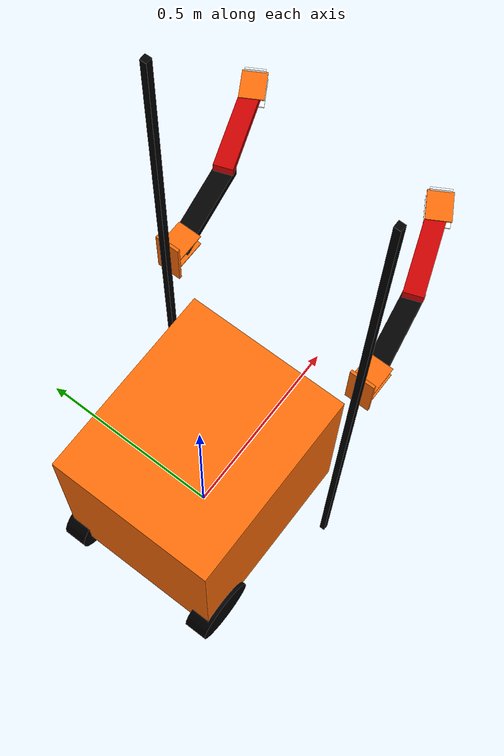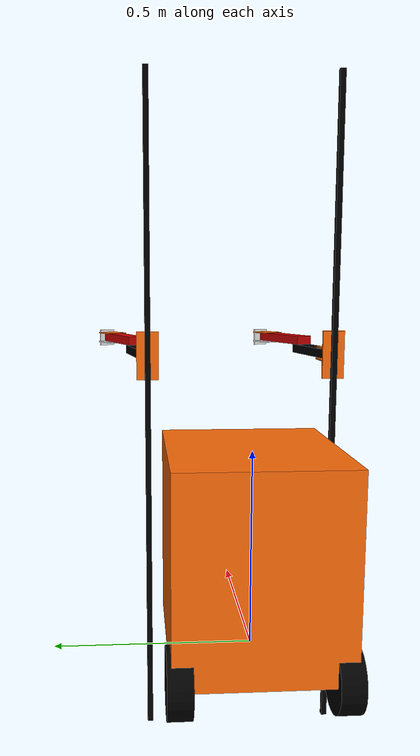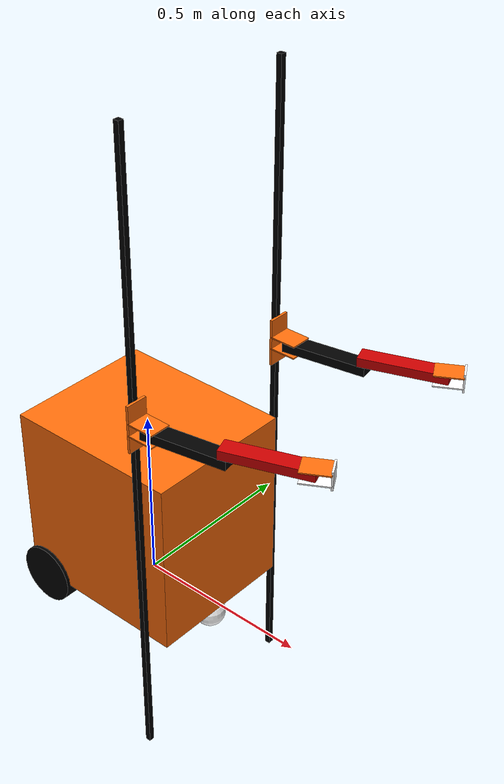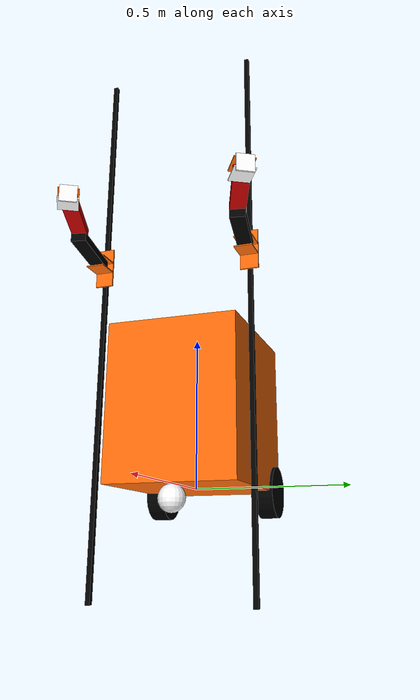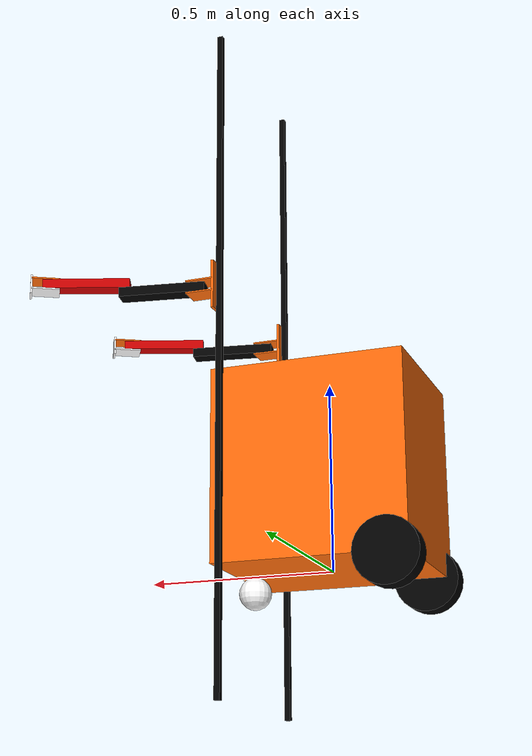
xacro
<?xml version="1.0"?>
<robot xmlns:xacro="http://www.ros.org/wiki/xacro" name="cobo_full">

  <!-- Base link + wheels (continuous joints for diff drive controller) -->
  <xacro:include filename="cobo_base.macro.xacro" />

  <!-- ros2_control: diff drive hardware -->
  <xacro:include filename="$(find diffdrive_arduino)/urdf/diffbot.ros2_control_v5.xacro" />

  <!-- Arm macro (cobo_arm) and arm link properties -->
  <xacro:include filename="cobo_arm.macro.xacro" />

  <!-- Left arm -->
  <xacro:cobo_arm prefix="left_" parent="base_link">
    <origin xyz="${base_length/2} ${base_width/2} ${-base_height/2 - wheel_radius}" rpy="0 0 ${-PI/2}"/>
  </xacro:cobo_arm>

  <!-- Right arm -->
  <xacro:cobo_arm prefix="right_" parent="base_link">
    <origin xyz="${base_length/2} ${-base_width/2} ${-base_height/2 - wheel_radius}" rpy="0 0 ${-PI/2}"/>
  </xacro:cobo_arm>

  <!-- ros2_control: arm + GPIO hardware -->
  <xacro:include filename="../ros2_control/cobo.ros2_control_macro.xacro" />

  <!-- ros2_control: arm + GPIO (cobo_arm_control/RobotSystem hardware plugin) -->
  <xacro:cobo_ros2_control name="arm" prefix="cobo_"/>

  <!-- ros2_control: diff drive (diffdrive_arduino/DiffDriveArduinoHardware plugin).
       prefix="" so it references left_wheel_joint / right_wheel_joint defined above. -->
  <xacro:diffbot_ros2_control name="DiffBot" prefix=""/>

</robot>

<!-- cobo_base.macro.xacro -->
<robot xmlns:xacro="http://www.ros.org/wiki/xacro" name="cobo_base">

    <material name="black">
    <color rgba="0.0 0.0 0.0 1.0"/>
  </material>
  <material name="blue">
    <color rgba="0.0 0.0 0.8 1.0"/>
  </material>
  <material name="green">
    <color rgba="0.0 0.8 0.0 1.0"/>
  </material>
  <material name="grey">
    <color rgba="0.2 0.2 0.2 1.0"/>
  </material>
  <material name="orange">
    <color rgba="1.0 0.4235294117647059 0.0392156862745098 1.0"/>
  </material>
  <material name="brown">
    <color rgba="0.8705882352941177 0.8117647058823529 0.7647058823529411 1.0"/>
  </material>
  <material name="red">
    <color rgba="0.8 0.0 0.0 1.0"/>
  </material>
  <material name="white">
    <color rgba="1.0 1.0 1.0 1.0"/>
  </material>

  <!-- Properties (from diffbot_description.urdf_v5.xacro) -->
  <xacro:property name="PI"                  value="3.1415926535897931"/>
  <xacro:property name="base_mass"           value="45"/>
  <xacro:property name="base_width"          value="0.51"/>
  <xacro:property name="base_length"         value="0.43"/>
  <xacro:property name="base_height"         value="0.51"/>
  <xacro:property name="wheel_mass"          value="3.0"/>
  <xacro:property name="wheel_len"           value="0.060"/>
  <xacro:property name="wheel_radius"        value="0.085"/>
  <xacro:property name="wheel_separation"    value="0.275"/>
  <xacro:property name="caster_wheel_mass"   value="0.1"/>
  <xacro:property name="caster_wheel_radius" value="${wheel_radius/2}"/>
  <xacro:property name="z_offset"            value="${wheel_radius}"/>

  <!-- base_footprint: virtual link used by the nav stack -->
  <link name="base_footprint"/>

  <joint name="base_footprint_joint" type="fixed">
    <parent link="base_footprint"/>
    <child link="base_link"/>
    <origin xyz="0 0 0" rpy="0 0 0"/>
  </joint>

  <!-- Base link -->
  <link name="base_link">
    <collision>
      <origin xyz="0 0 1" rpy="0 0 0"/>
      <geometry>
        <box size="${base_width} ${base_length} ${base_height}"/>
      </geometry>
    </collision>
    <visual>
      <origin xyz="0 0 0.255" rpy="0 0 0"/>
      <geometry>
        <box size="${base_width} ${base_length} ${base_height}"/>
      </geometry>
      <material name="orange"/>
    </visual>
    <inertial>
      <origin xyz="0.000471 0 0.999626" rpy="0 0 0"/>
      <mass value="${base_mass}"/>
      <inertia
        ixx="${(base_mass / 12.0) * (base_length*base_length + base_height*base_height)}" ixy="0.0" ixz="0.0"
        iyy="${(base_mass / 12.0) * (base_height*base_height + base_width*base_width)}" iyz="0.0"
        izz="${(base_mass / 12.0) * (base_width*base_width + base_length*base_length)}"/>
    </inertial>
  </link>

  <!-- Right wheel: CONTINUOUS -->
  <joint name="right_wheel_joint" type="continuous">
    <parent link="base_link"/>
    <child link="right_wheel"/>
    <origin xyz="-0.2 -${base_width/2 - wheel_len} 0" rpy="0 0 0"/>
    <axis xyz="0 1 0"/>
    <dynamics damping="0.2"/>
  </joint>

  <link name="right_wheel">
    <collision>
      <origin xyz="0 0 0" rpy="${PI/2} 0 0"/>
      <geometry>
        <cylinder length="${wheel_len}" radius="${wheel_radius}"/>
      </geometry>
    </collision>
    <visual>
      <origin xyz="0 0 0" rpy="${PI/2} 0 0"/>
      <geometry>
        <cylinder length="${wheel_len}" radius="${wheel_radius}"/>
      </geometry>
      <material name="black"/>
    </visual>
    <inertial>
      <origin xyz="0 0 0" rpy="${PI/2} 0 0"/>
      <mass value="${wheel_mass}"/>
      <inertia
        ixx="0.055" ixy="0.0" ixz="0.0"
        iyy="0.055" iyz="0.0"
        izz="0.108"/>
    </inertial>
  </link>

  <!-- Left wheel: CONTINUOUS -->
  <joint name="left_wheel_joint" type="continuous">
    <parent link="base_link"/>
    <child link="left_wheel"/>
    <origin xyz="-0.2 ${base_width/2 - wheel_len} 0" rpy="0 0 0"/>
    <axis xyz="0 1 0"/>
    <dynamics damping="0.2"/>
  </joint>

  <link name="left_wheel">
    <collision>
      <origin xyz="0 0 0" rpy="${PI/2} 0 0"/>
      <geometry>
        <cylinder length="${wheel_len}" radius="${wheel_radius}"/>
      </geometry>
    </collision>
    <visual>
      <origin xyz="0 0 0" rpy="${PI/2} 0 0"/>
      <geometry>
        <cylinder length="${wheel_len}" radius="${wheel_radius}"/>
      </geometry>
      <material name="black"/>
    </visual>
    <inertial>
      <origin xyz="0 0 0" rpy="${PI/2} 0 0"/>
      <mass value="${wheel_mass}"/>
      <inertia
        ixx="0.055" ixy="0.0" ixz="0.0"
        iyy="0.055" iyz="0.0"
        izz="0.108"/>
    </inertial>
  </link>

  <!-- Caster wheel (single, fixed) -->
  <joint name="caster_wheel_joint" type="fixed">
    <parent link="base_link"/>
    <child link="caster_wheel"/>
    <origin xyz="${base_width/2 - caster_wheel_radius} 0 ${-caster_wheel_radius}" rpy="0 0 0"/>
  </joint>

  <link name="caster_wheel">
    <collision>
      <origin xyz="0 0 0" rpy="0 0 0"/>
      <geometry>
        <sphere radius="${caster_wheel_radius}"/>
      </geometry>
      <surface>
        <friction>
          <ode>
            <mu>0.001</mu>
            <mu2>0.001</mu2>
            <kp>0.001</kp>
            <kd>0.001</kd>
          </ode>
        </friction>
      </surface>
    </collision>
    <visual>
      <origin xyz="0 0 0" rpy="0 0 0"/>
      <geometry>
        <sphere radius="${caster_wheel_radius}"/>
      </geometry>
      <material name="white"/>
    </visual>
    <inertial>
      <origin xyz="0 0 0" rpy="0 0 0"/>
      <mass value="${caster_wheel_mass}"/>
      <inertia
        ixx="0.001" ixy="0.0" ixz="0.0"
        iyy="0.001" iyz="0.0"
        izz="0.001"/>
    </inertial>
  </link>

</robot>

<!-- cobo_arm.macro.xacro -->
<!-- Arm macro for cobo_full.  Fully self-contained: no dependency on bob4.macro.xacro.
     Relies on PI, base_*, and material names being already in scope (defined by cobo_base.macro.xacro). -->
<robot xmlns:xacro="http://www.ros.org/wiki/xacro" name="cobo_arm">

  <!-- Tower (vertical rail) -->
  <xacro:property name="s0_tower_width"  value="0.015"/>
  <xacro:property name="s0_tower_length" value="0.015"/>
  <xacro:property name="s0_tower_height" value="1.8"/>
  <xacro:property name="s0_tower_mass"   value="1.0"/>
  <xacro:property name="s0_tower_color"  value="black"/>

  <!-- Slider -->
  <xacro:property name="s1_slider_width"  value="0.007"/>
  <xacro:property name="s1_slider_length" value="0.060"/>
  <xacro:property name="s1_slider_height" value="0.131"/>
  <xacro:property name="s1_slider_mass"   value="1"/>
  <xacro:property name="s1_slider_color"  value="orange"/>

  <!-- Slider bracket -->
  <xacro:property name="s1_slider_bracket_width"  value="0.075"/>
  <xacro:property name="s1_slider_bracket_length" value="0.060"/>
  <xacro:property name="s1_slider_bracket_height" value="0.0035"/>
  <xacro:property name="s1_slider_bracket_mass"   value="1"/>
  <xacro:property name="s1_slider_bracket_color"  value="orange"/>

  <!-- Arm link 0 -->
  <xacro:property name="arm_l0_width"  value="0.0475"/>
  <xacro:property name="arm_l0_length" value="0.23"/>
  <xacro:property name="arm_l0_height" value="0.025"/>
  <xacro:property name="arm_l0_mass"   value="1"/>
  <xacro:property name="arm_l0_color"  value="black"/>

  <!-- Arm link 1 -->
  <xacro:property name="arm_l1_width"  value="0.0475"/>
  <xacro:property name="arm_l1_length" value="0.23"/>
  <xacro:property name="arm_l1_height" value="0.025"/>
  <xacro:property name="arm_l1_mass"   value="1"/>
  <xacro:property name="arm_l1_color"  value="red"/>

  <!-- Arm link 2 -->
  <xacro:property name="arm_l2_width"  value="0.05"/>
  <xacro:property name="arm_l2_length" value="0.005"/>
  <xacro:property name="arm_l2_height" value="0.05"/>
  <xacro:property name="arm_l2_mass"   value="1"/>
  <xacro:property name="arm_l2_color"  value="white"/>

  <!-- Arm link 2 bracket -->
  <xacro:property name="arm_l2_bracket_width"  value="0.06"/>
  <xacro:property name="arm_l2_bracket_length" value="0.075"/>
  <xacro:property name="arm_l2_bracket_height" value="0.0035"/>
  <xacro:property name="arm_l2_bracket_mass"   value="1"/>
  <xacro:property name="arm_l2_bracket_color"  value="orange"/>

  <xacro:macro name="cobo_arm" params="prefix parent *origin">

    <link name="${prefix}T_S0_T">
      <visual>
        <geometry>
          <box size="${s0_tower_length} ${s0_tower_width} ${s0_tower_height}"/>
        </geometry>
        <origin xyz="0 0 ${s0_tower_height/2}" rpy="0 0 0"/>
        <material name="${s0_tower_color}"/>
      </visual>
      <collision>
        <geometry>
          <box size="${s0_tower_length} ${s0_tower_width} ${s0_tower_height}"/>
        </geometry>
      </collision>
    </link>

    <joint name="${prefix}T_J_S0_BASE_TO_T" type="fixed">
      <parent link="base_link"/>
      <child link="${prefix}T_S0_T"/>
      <xacro:insert_block name="origin"/>
    </joint>

    <link name="${prefix}S1_U_SL">
      <visual>
        <geometry>
          <box size="${s1_slider_length} ${s1_slider_width} ${s1_slider_height}"/>
        </geometry>
        <material name="${s1_slider_color}"/>
      </visual>
      <collision>
        <geometry>
          <box size="${s1_slider_length} ${s1_slider_width} ${s1_slider_height}"/>
        </geometry>
      </collision>
    </link>

    <joint name="${prefix}T_J_S0_T_TO_U_SL" type="prismatic">
      <parent link="${prefix}T_S0_T"/>
      <child link="${prefix}S1_U_SL"/>
      <origin rpy="0 0 0" xyz="0 0.01 0"/>
      <axis xyz="0 0 1"/>
      <limit lower="0.320" upper="${s0_tower_height}" velocity="1.0" effort="1"/>
    </joint>

    <link name="${prefix}S1_SL_B0">
      <visual>
        <geometry>
          <box size="${s1_slider_bracket_length} ${s1_slider_bracket_width} ${s1_slider_bracket_height}"/>
        </geometry>
        <material name="${s1_slider_color}"/>
      </visual>
      <collision>
        <geometry>
          <box size="${s1_slider_bracket_length} ${s1_slider_bracket_width} ${s1_slider_bracket_height}"/>
        </geometry>
      </collision>
    </link>

    <link name="${prefix}S1_SL_B1">
      <visual>
        <geometry>
          <box size="${s1_slider_bracket_length} ${s1_slider_bracket_width} ${s1_slider_bracket_height}"/>
        </geometry>
        <material name="${s1_slider_color}"/>
      </visual>
      <collision>
        <geometry>
          <box size="${s1_slider_bracket_length} ${s1_slider_bracket_width} ${s1_slider_bracket_height}"/>
        </geometry>
      </collision>
    </link>

    <joint name="${prefix}T_J_S1_SL_TO_B0" type="fixed">
      <parent link="${prefix}S1_U_SL"/>
      <child link="${prefix}S1_SL_B0"/>
      <origin rpy="0 0 0" xyz="0 ${s1_slider_bracket_width/2} ${arm_l0_height/2 + 0.004}"/>
    </joint>

    <joint name="${prefix}T_J_S1_SL_TO_B1" type="fixed">
      <parent link="${prefix}S1_U_SL"/>
      <child link="${prefix}S1_SL_B1"/>
      <origin rpy="0 0 0" xyz="0 ${s1_slider_bracket_width/2} ${-arm_l0_height/2 - 0.004}"/>
    </joint>

    <link name="${prefix}S1_U_A_L0">
      <visual>
        <geometry>
          <box size="${arm_l0_length} ${arm_l0_width} ${arm_l0_height}"/>
        </geometry>
        <origin rpy="0 0 0" xyz="0.10 0 0"/>
        <material name="${arm_l0_color}"/>
      </visual>
      <collision>
        <geometry>
          <box size="${arm_l0_length} ${arm_l0_width} ${arm_l0_height}"/>
        </geometry>
        <origin rpy="0 0 0" xyz="0.10 0 0"/>
      </collision>
    </link>

    <joint name="${prefix}A_J_S1_U_SL_TO_A_L0" type="revolute">
      <parent link="${prefix}S1_SL_B1"/>
      <child link="${prefix}S1_U_A_L0"/>
      <origin rpy="0 0 ${-PI/2}" xyz="0 ${s1_slider_width} ${arm_l0_height/2 + 0.004}"/>
      <axis xyz="0 0 1"/>
      <limit lower="1.57" upper="5.06" velocity="1.0" effort="1"/>
    </joint>

    <link name="${prefix}S1_U_A_L1">
      <visual>
        <geometry>
          <box size="${arm_l1_length} ${arm_l1_width} ${arm_l1_height}"/>
        </geometry>
        <origin rpy="0 0 0" xyz="0.10 0 0"/>
        <material name="${arm_l1_color}"/>
      </visual>
      <collision>
        <geometry>
          <box size="${arm_l1_length} ${arm_l1_width} ${arm_l1_height}"/>
        </geometry>
        <origin rpy="0 0 0" xyz="0.10 0 0"/>
      </collision>
    </link>

    <joint name="${prefix}A_J_S1_U_A_L0_TO_L1" type="revolute">
      <parent link="${prefix}S1_U_A_L0"/>
      <child link="${prefix}S1_U_A_L1"/>
      <axis xyz="0 0 1"/>
      <origin rpy="0 0 ${PI}" xyz="${arm_l1_length-0.025} 0 ${arm_l0_height}"/>
      <limit lower="1.57" upper="5.06" velocity="1.0" effort="1"/>
    </joint>

    <link name="${prefix}S1_U_A_L2">
      <visual>
        <geometry>
          <box size="${arm_l2_length} ${arm_l2_width} ${arm_l2_height}"/>
        </geometry>
        <material name="${arm_l2_color}"/>
      </visual>
      <collision>
        <geometry>
          <box size="${arm_l2_length} ${arm_l2_width} ${arm_l2_height}"/>
        </geometry>
      </collision>
    </link>

    <link name="${prefix}S1_U_A_L2_B0">
      <visual>
        <geometry>
          <box size="${arm_l2_bracket_length} ${arm_l2_bracket_width} ${arm_l2_bracket_height}"/>
        </geometry>
        <material name="${arm_l2_bracket_color}"/>
      </visual>
      <collision>
        <geometry>
          <box size="${arm_l2_bracket_length} ${arm_l2_bracket_width} ${arm_l2_bracket_height}"/>
        </geometry>
      </collision>
    </link>

    <link name="${prefix}S1_U_A_L2_B1">
      <visual>
        <geometry>
          <box size="${arm_l2_bracket_length} ${arm_l2_bracket_width} ${arm_l2_bracket_height}"/>
        </geometry>
        <material name="white"/>
      </visual>
      <collision>
        <geometry>
          <box size="${arm_l2_bracket_length} ${arm_l2_bracket_width} ${arm_l2_bracket_height}"/>
        </geometry>
      </collision>
    </link>

    <joint name="${prefix}A_J_L_S1_U_A_L2_B0" type="fixed">
      <parent link="${prefix}S1_U_A_L2"/>
      <child link="${prefix}S1_U_A_L2_B0"/>
      <origin rpy="0 0 0" xyz="${-arm_l2_bracket_length/2} 0 ${arm_l2_height/4 + 0.0035}"/>
    </joint>

    <joint name="${prefix}A_J_L_S1_U_A_L2_B1" type="fixed">
      <parent link="${prefix}S1_U_A_L2_B1"/>
      <child link="${prefix}S1_U_A_L2"/>
      <origin rpy="0 0 0" xyz="${arm_l2_bracket_length/2} 0 ${arm_l2_height/4}"/>
    </joint>

    <joint name="${prefix}A_J_S1_U_A_L1_TO_L2_B1" type="revolute">
      <parent link="${prefix}S1_U_A_L1"/>
      <child link="${prefix}S1_U_A_L2_B1"/>
      <origin rpy="0 0 ${-PI}" xyz="${arm_l1_length - 0.02} 0 ${-arm_l1_height/2 - 0.0035}"/>
      <axis xyz="0 0 1"/>
      <limit lower="1.57" upper="5.06" velocity="1.0" effort="1"/>
    </joint>

  </xacro:macro>

</robot>
